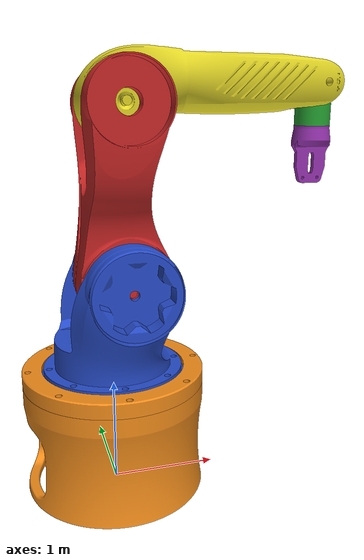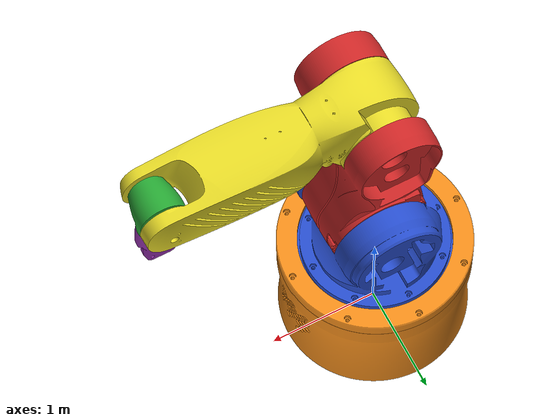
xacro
<?xml version="1.0"?>
<robot name="manipulador" xmlns:xacro="http://www.ros.org/wiki/xacro">
	<!-- Put here the robot description -->
	<xacro:include filename="$(find manipulador_description)/urdf/manipulador.urdf" />
	<xacro:include filename="$(find manipulador_description)/urdf/materials.xacro" />
</robot>

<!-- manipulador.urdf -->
<robot name="manipulador">

<!--===================== LINKS =====================-->
  <link name = "world">
  </link>
  <!-- Support - 1 parte -->
  <link name="Support">
    <!--origin rpy="0 0 0" xyz="0 0 0.54" /-->
    <inertial>
      <!-- Volume:  4.9678384375e-01 -->
      <mass value="0.73"/>

      <!-- Center of mass:  7.1726190000e-02  8.3274000000e-04  1.3966684000e-01 -->
      <origin xyz="7.1726190000e-02  8.3274000000e-04  1.3966684000e-01" rpy="0 0 0"/>

      <!-- Inertia matrix -->
      <inertia
        ixx="-0.02"
        ixy="1.0"
        ixz="0"
        iyy="-0.02"
        iyz="0.05"
        izz="1.0"
      />
    </inertial>
    <visual name="Support">
      <origin rpy="0 0 0" xyz="0 0 0.55" />
      <geometry>
        <mesh filename="package://manipulador_description/meshes/Support/Support.stl"/>
      </geometry>
    </visual>
    <collision>
      <origin rpy="0 0 0" xyz="0 0 0.55" />
      <geometry>
        <mesh filename="package://manipulador_description/meshes/Support/Support.stl"/>
      </geometry>
    </collision>

    <visual name="Ring">
      <origin rpy="0 0 -0.004" xyz="0.00014 -0.002 1.13" />
      <geometry>
        <mesh filename="package://manipulador_description/meshes/Support/Ring.stl"/>
      </geometry>
    </visual>
    <collision>
      <origin rpy="0 0 -0.004" xyz="0.00014 -0.002 1.13" />
      <geometry>
        <mesh filename="package://manipulador_description/meshes/Support/Ring.stl"/>
      </geometry>
    </collision>
  </link>

  <!-- Base - 2 parte -->
  <link name="Base">
    <inertial>
      <!-- Volume:  5.1779593750e-01 -->
      <mass value="0.791"/>

      <!-- Center of mass:  1.0734090000e-02 -3.1306260000e-02 -2.0209423000e-01 -->
      <origin xyz="1.0734090000e-02 -3.1306260000e-02 -2.0209423000e-01" rpy="0 0 0"/>
      <inertia ixx="0.29"
        ixy= "-0.14"
        ixz="0.95"
        iyy="-0.99"
        iyz="-0.14"
        izz="-0.29"/>
    </inertial>

    <visual name="toothedRing">
      <origin xyz="0 0 -0.04" rpy="0 0 0"/>
      <geometry>
        <mesh filename="package://manipulador_description/meshes/Base/ToothedRing.stl"/>
      </geometry>
    </visual>
    <collision>
      <origin xyz="0 0 -0.04" rpy="0 0 0"/>
      <geometry>
        <mesh filename="package://manipulador_description/meshes/Base/ToothedRing.stl"/>
      </geometry>
    </collision>

    <visual name="Base">
      <origin xyz="0 0 0.63" rpy="0 0 0"/>
      <geometry>
        <mesh filename="package://manipulador_description/meshes/Base/Base.stl"/>
      </geometry>
    </visual>
    <collision>
      <origin xyz="0 0 0.63" rpy="0 0 0"/>
      <geometry>
        <mesh filename="package://manipulador_description/meshes/Base/Base.stl"/>
      </geometry>
    </collision>
  </link>

  <!-- Lower Arm - 3 parte -->
  <link name="LowerArm">
    <!--origin xyz="0.117 -0.015 2.15" rpy="0 0 0"/-->
    <inertial>
      <!-- Volume:  7.2606862500e-01 -->
      <mass value="0.464"/>

     <!-- Center of mass: -2.9281710000e-02 -1.9001520000e-02  4.2914791000e-01 -->
      <origin xyz="-2.9281710000e-02 -1.9001520000e-02  4.2914791000e-01" rpy="0 0 0"/>
      <inertia
        ixx="2.0930545622e-01"
        ixy="-2.3801660277e-04"
        ixz="2.1646688011e-03"
        iyy="1.9833343770e-01"
        iyz="1.4079684100e-04"
        izz="5.1472661830e-02"/>
    </inertial>
    <visual name="LowerArm">
      <origin xyz="0 -0.015 0.15" rpy="0 0 0"/>
      <geometry>
        <mesh filename="package://manipulador_description/meshes/LowerArm/LowerArm.stl"/>
      </geometry>
    </visual>
    <collision>
      <origin xyz="0 -0.015 0.15" rpy="0 0 0"/>
      <geometry>
        <mesh filename="package://manipulador_description/meshes/LowerArm/LowerArm.stl"/>
      </geometry>
    </collision>

    <visual name="pino">
      <origin xyz="0.005 0 0" rpy="1.5708 1.5708 0"/>
      <geometry>
        <cylinder length="0.8" radius="0.04"/>
      </geometry>
    </visual>
     <collision>
      <origin xyz="0.005 0 0" rpy="1.5708 1.5708 0"/>
      <geometry>
        <cylinder length="0.8" radius="0.04"/>
      </geometry>
    </collision>>
  </link>

  <!-- Upper Arm - 4 parte -->
  <link name="UpperArm">
    <!--origin xyz="0.22 0.001 3.63" rpy="0 0 0"/-->
    <inertial>
      <!-- Volume:  6.3770118750e-01 -->
      <mass value="0.407"/>

     <!-- Center of mass:  5.4617455000e-01  4.7914700000e-03  7.7464810000e-02 -->
      <origin xyz="5.4617455000e-01  4.7914700000e-03  7.7464810000e-02" rpy="0 0 0"/>
      <inertia
        ixx="3.0737638857e-02"
        ixy="-5.9791790806e-03"
        ixz="-1.8271795362e-02"
        iyy="2.0499584345e-01"
        iyz="-8.6160095162e-04"
        izz="2.0368961160e-01"/>
    </inertial>
    <visual name="UpperArm">
      <origin xyz="0.103 0.01 0.035" rpy="0 0 0"/>
      <geometry>
        <mesh filename="package://manipulador_description/meshes/UpperArm/UpperArm.stl"/>
      </geometry>
    </visual>
    <collision>
      <origin xyz="0.103 0.01 0.035" rpy="0 0 0"/>
      <geometry>
        <mesh filename="package://manipulador_description/meshes/UpperArm/UpperArm.stl"/>
      </geometry>
    </collision>

    <visual name="pinoUpper">
      <origin xyz="0 0.015 0" rpy="1.5708 1.5708 0"/>
      <geometry>
        <cylinder length="0.7" radius="0.04"/>
      </geometry>
    </visual>
    <collision>
      <origin xyz="0 0.015 0" rpy="1.5708 1.5708 0"/>
      <geometry>
        <cylinder length="0.7" radius="0.04"/>
      </geometry>
    </collision>
  </link>

  <!-- GrasperHolder - 5 parte -->
  <link name="GrasperHolder">
    <inertial>
      <!-- Volume:  4.6362562500e-02 -->
      <mass value="0.068"/>

      <!-- Center of mass: -3.0875000000e-04  8.1761400000e-03  2.6252960000e-02 -->
      <origin xyz="-3.0875000000e-04  8.1761400000e-03  2.6252960000e-02" rpy="0 0 0"/>
      <inertia
        ixx="5.9870685534e-03"
        ixy="9.5459665061e-06"
        ixz="-1.1134579051e-05"
        iyy="5.9527261894e-03"
        iyz="-2.7627261220e-04"
        izz="3.5809690200e-03"/>
    </inertial>
    <visual name="GrasperHolder">
      <origin xyz="0.004 0.001 -0.087" rpy="0 0 0"/>
      <geometry>
        <mesh filename="package://manipulador_description/meshes/GrasperHolder/GrasperHolder.stl"/>
      </geometry>
    </visual>
    <collision>
      <origin xyz="0.004 0.001 -0.087" rpy="0 0 0"/>
      <geometry>
        <mesh filename="package://manipulador_description/meshes/GrasperHolder/GrasperHolder.stl"/>
      </geometry>
    </collision>
  </link>

  <!-- Grasper - 6 parte -->
  <link name="Grasper">
    <inertial>
      <!-- Volume:  5.9164203125e-02 -->
      <mass value="0.03"/>

      <!-- Center of mass:  3.3870000000e-04  4.5093000000e-04 -2.3830086000e-01 -->
      <origin xyz="3.3870000000e-04  4.5093000000e-04 -2.3830086000e-01" rpy="0 0 0"/>
      <inertia
        ixx="1.0964352864e-02"
        ixy="2.3511915923e-06"
        ixz="1.0524369545e-05"
        iyy="1.2156277648e-02"
        iyz="1.0870709670e-05"
        izz="1.9657217347e-03"/>
    </inertial>

    <visual name="Grasper">
      <origin xyz="0.004 -0.0075 -0.2" rpy="0 0 0"/>
      <geometry>
        <mesh filename="package://manipulador_description/meshes/Grasper/GrasperBody.stl"/>
      </geometry>
    </visual>
    <collision>
      <origin xyz="0.004 -0.0075 -0.2" rpy="0 0 0"/>
      <geometry>
        <mesh filename="package://manipulador_description/meshes/Grasper/GrasperBody.stl"/>
      </geometry>
    </collision>
  </link>

<!--===================== Joints ===================== -->
  <joint name="world_joint" type="fixed">
    <parent link="world" />
    <child link = "Support" />
    <origin xyz="0.0 0.0 0.0" rpy="0.0 0.0 0.0" />
  </joint>

  <!-- joint 1 - Support/Base -->
  <joint name="first" type="revolute">
    <origin xyz="0 0 1.15" rpy="0 0 0"/>
    <axis xyz="0 0 1"/>
    <parent link="Support"/>
    <child link="Base"/>
    <limit effort="50" lower="-3.14159" upper="3.14159" velocity="1"/>
    <dynamics damping="0.7" friction="0.0"/>
  </joint>

  <!-- joint 2 - Base/ Lower Arm -->
  <joint name="second" type="revolute">
    <origin xyz="0.116 0 0.85" rpy="0 0 0"/>
    <axis xyz="0 1 0"/>
    <parent link="Base"/>
    <child link="LowerArm"/>
    <limit effort="50" lower="-1.5708" upper="1.5708" velocity="1"/>
    <dynamics damping="0.7" friction="0.0"/>
  </joint>

  <!-- joint 3 - Lower Arm/ Upper Arm  -->
  <joint name="third" type="revolute">
    <!--origin xyz="0.001 0.014 1.6" rpy="0 0 0"/-->
    <origin xyz="0 0 1.6" rpy="0 0 0"/>
    <axis xyz="0 1 0"/>
    <parent link="LowerArm"/>
    <child link="UpperArm"/>
    <limit effort="50" lower="-1.5708" upper="0" velocity="1"/>
    <dynamics damping="0.7" friction="0.0"/>
  </joint>

  <!-- joint 4 - Upper Arm/Grasper Holder  -->
  <joint name="fourth" type="revolute">
    <origin xyz="1.826 0 0.17" rpy="0 0 0"/>
    <axis xyz="0 1 0"/>
    <parent link="UpperArm"/>
    <child link="GrasperHolder"/>
    <limit effort="50" lower="-1.5708" upper="0" velocity="1"/>
    <dynamics damping="0.7" friction="0.0"/>
  </joint>

  <!-- joint 5 - Grasper Holder/Grasper  -->
  <joint name="fifth" type="revolute">
    <origin xyz="0 0 -0.37" rpy="0 0 0"/>
    <axis xyz="0 0 1"/>
    <parent link="GrasperHolder"/>
    <child link="Grasper"/>
    <limit effort="50" lower="-1.5708" upper="0" velocity="1"/>
    <dynamics damping="0.7" friction="0.0"/>
  </joint>

<!--===================== TRANSMISSION ===================== -->
  <!-- transmission 1 - Support/Base -->
  <transmission name="first_transmission">
    <type>transmission_interface/SimpleTransmission</type>
    <joint name="first">
      <hardwareInterface>hardware_interface/EffortJointInterface</hardwareInterface>
    </joint>
    <actuator name="$first_motor">
      <mechanicalReduction>1</mechanicalReduction>
    </actuator>
  </transmission>

  <!-- transmission 2 - Base/Lower Arm -->
  <transmission name="second_transmission">
    <type>transmission_interface/SimpleTransmission</type>
    <joint name="second">
      <hardwareInterface>hardware_interface/EffortJointInterface</hardwareInterface>
    </joint>
    <actuator name="base_lowerArm_motor">
      <mechanicalReduction>1</mechanicalReduction>
    </actuator>
  </transmission>

  <!-- transmission 3 - Lower Arm/Upper Arm -->
  <transmission name="third_transmission">
    <type>transmission_interface/SimpleTransmission</type>
    <joint name="third">
      <hardwareInterface>hardware_interface/EffortJointInterface</hardwareInterface>
    </joint>
    <actuator name="$LowerArm_UpperArm_motor">
      <mechanicalReduction>1</mechanicalReduction>
    </actuator>
  </transmission>

  <!-- transmission 4 - Upper Arm/Grasper Holder -->
  <transmission name="fourth_transmission">
    <type>transmission_interface/SimpleTransmission</type>
    <joint name="fourth">
      <hardwareInterface>hardware_interface/EffortJointInterface</hardwareInterface>
    </joint>
    <actuator name="$UpperArm_GrasperHolder_motor">
      <mechanicalReduction>1</mechanicalReduction>
    </actuator>
  </transmission>

  <!-- transmission 5 - Grasper Holder/Grasper -->
  <transmission name="fifth_transmission">
    <type>transmission_interface/SimpleTransmission</type>
    <joint name="fifth">
      <hardwareInterface>hardware_interface/EffortJointInterface</hardwareInterface>
    </joint>
    <actuator name="$GrasperHolder_Grasper_motor">
      <mechanicalReduction>1</mechanicalReduction>
    </actuator>
  </transmission>

<!-- ========================== PLUGINS ========================== -->
  <gazebo>
    <plugin name="gazebo_ros_control" filename="libgazebo_ros_control.so">
      <robotNamespace>/manipulador</robotNamespace>
    </plugin>
  </gazebo>

<!-- ================== Materials =================== -->
  <gazebo reference="Support">
    <material>Gazebo/Orange</material>
  </gazebo>
  <gazebo reference="Ring">
    <material>Gazebo/Orange</material>
  </gazebo>
  <gazebo reference="Base">
    <material>Gazebo/Blue</material>
  </gazebo>
  <gazebo reference="LowerArm">
    <material>Gazebo/Red</material>
  </gazebo>
  <gazebo reference="UpperArm">
    <material>Gazebo/Yellow</material>
  </gazebo>
  <gazebo reference="GrasperHolder">
    <material>Gazebo/Green</material>
  </gazebo>
  <gazebo reference="Grasper">
    <material>Gazebo/Purple</material>
  </gazebo>

</robot>

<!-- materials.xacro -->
<robot>
  <material name="black">
    <color rgba="0.0 0.0 0.0 1.0"/>
  </material>

  <material name="blue">
    <color rgba="0.0 0.0 1 1.0"/>
  </material>

  <material name="green">
    <color rgba="0.0 0.8 0.0 1.0"/>
  </material>

  <material name="grey">
    <color rgba="0.2 0.2 0.2 1.0"/>
  </material>

  <material name="orange">
    <color rgba="${255/255} ${108/255} ${10/255} 1.0"/>
  </material>
  <material name="purple">
    <color rgba="0.5 0.0 0.5 1.0"/>
  </material>

  <material name="yellow">
    <color rgba="0.6 0.8 0.0 1.0"/>
  </material>

  <material name="red">
    <color rgba="0.8 0.0 0.0 1.0"/>
  </material>

  <material name="white">
    <color rgba="1.0 1.0 1.0 1.0"/>
  </material>
</robot>
